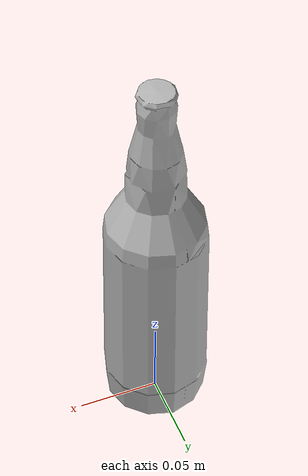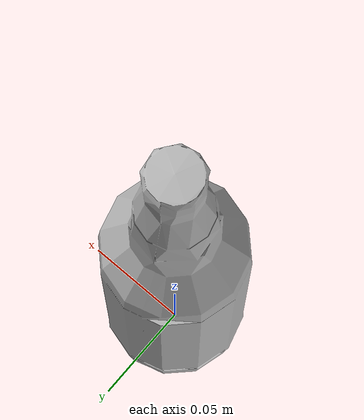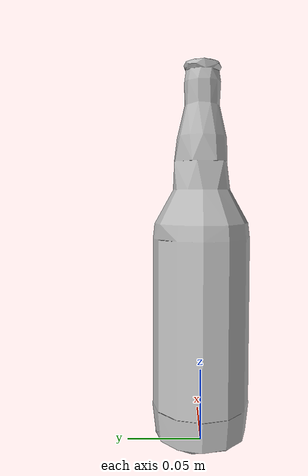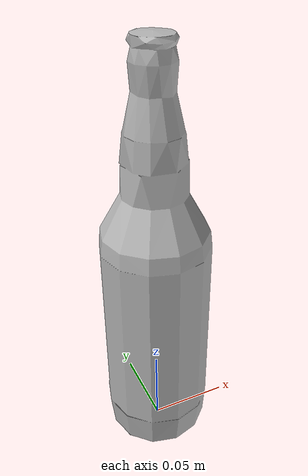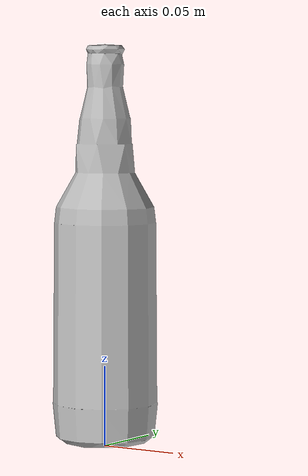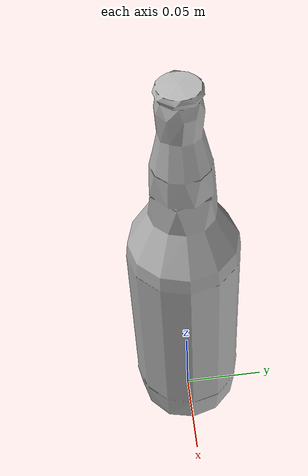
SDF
<?xml version="1.0"?>
<sdf version="1.6">
  <model name='ale'>
    <pose frame=''>0 0 0.125 0 0 0</pose>
    <link name='ale_link'>
      <inertial>
        <pose frame=''>0 0 0 0 0 0</pose>
        <mass>0.1</mass>
        <inertia>
          <ixx>0.00055575</ixx>
          <ixy>0</ixy>
          <ixz>0</ixz>
          <iyy>0.00055575</iyy>
          <iyz>0</iyz>
          <izz>0.0001755</izz>
        </inertia>
        <pose>0 0 0 0 0 0</pose>
      </inertial>
      <collision name='collision_bottom'>
        <pose>0 0 -0.045 0 0 0</pose>
        <geometry>
          <box>
            <size>0.05 0.05 0.15</size>
          </box>

        </geometry>
        <max_contacts>10</max_contacts>
        <surface>
          <contact>
            <ode />
          </contact>
          <bounce />
          <friction>
            <ode>
              <mu>10</mu>
              <mu2>10</mu2>
            </ode>
          </friction>
        </surface>
      </collision>
      <collision name='collision_neck'>
        <pose>0 0 0.075 0 0 0</pose>
        <geometry>
          <cylinder>
            <radius>0.015000</radius>
            <length>0.10000</length>
          </cylinder>

        </geometry>
        <max_contacts>10</max_contacts>
        <surface>
          <contact>
            <ode />
          </contact>
          <bounce />
          <friction>
            <ode>
              <mu>10</mu>
              <mu2>10</mu2>
            </ode>
          </friction>
        </surface>
      </collision>
      <visual name='visual'>
        <geometry>
          <mesh>
            <uri>model://ale/meshes/ale.dae</uri>
            <scale>1 1 1</scale>
          </mesh>
        </geometry>
      </visual>
      <self_collide>0</self_collide>
      <enable_wind>0</enable_wind>
      <kinematic>0</kinematic>
    </link>
  </model>
</sdf>
